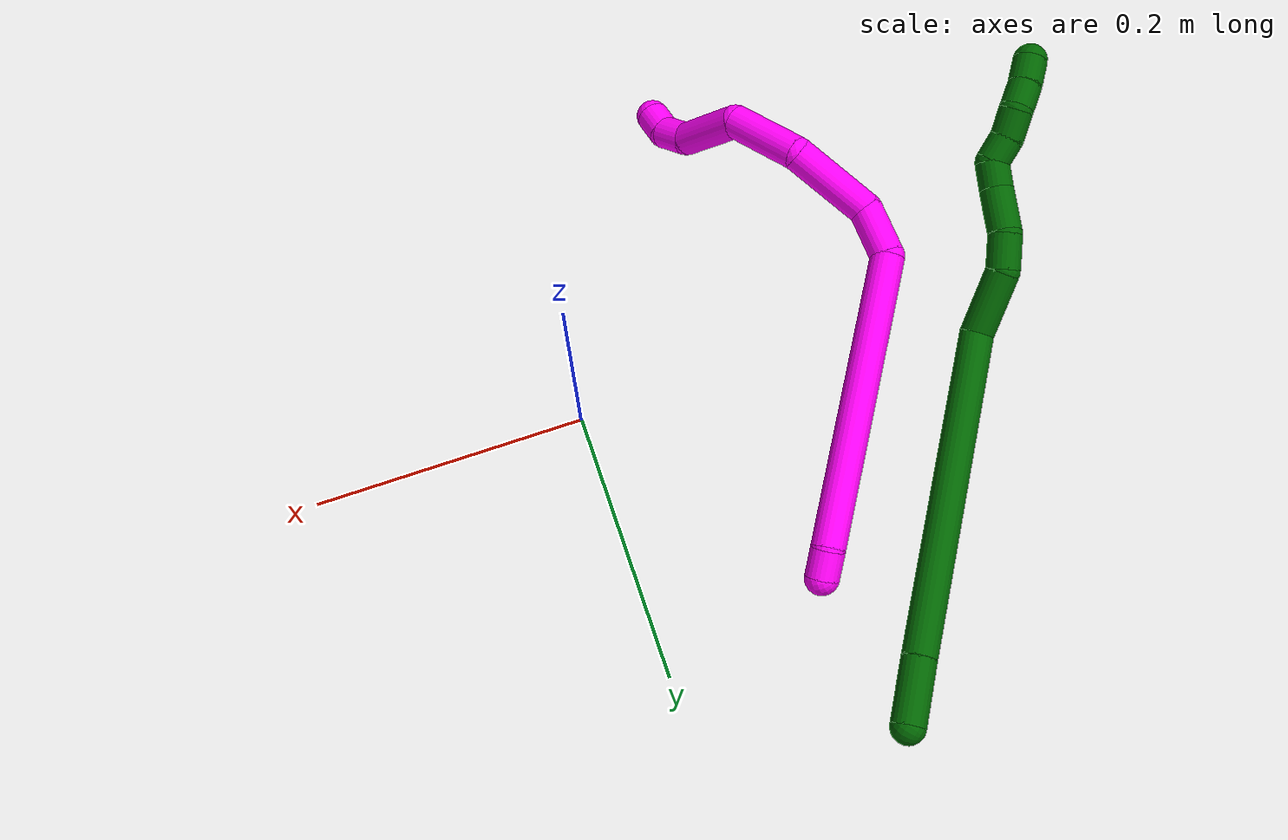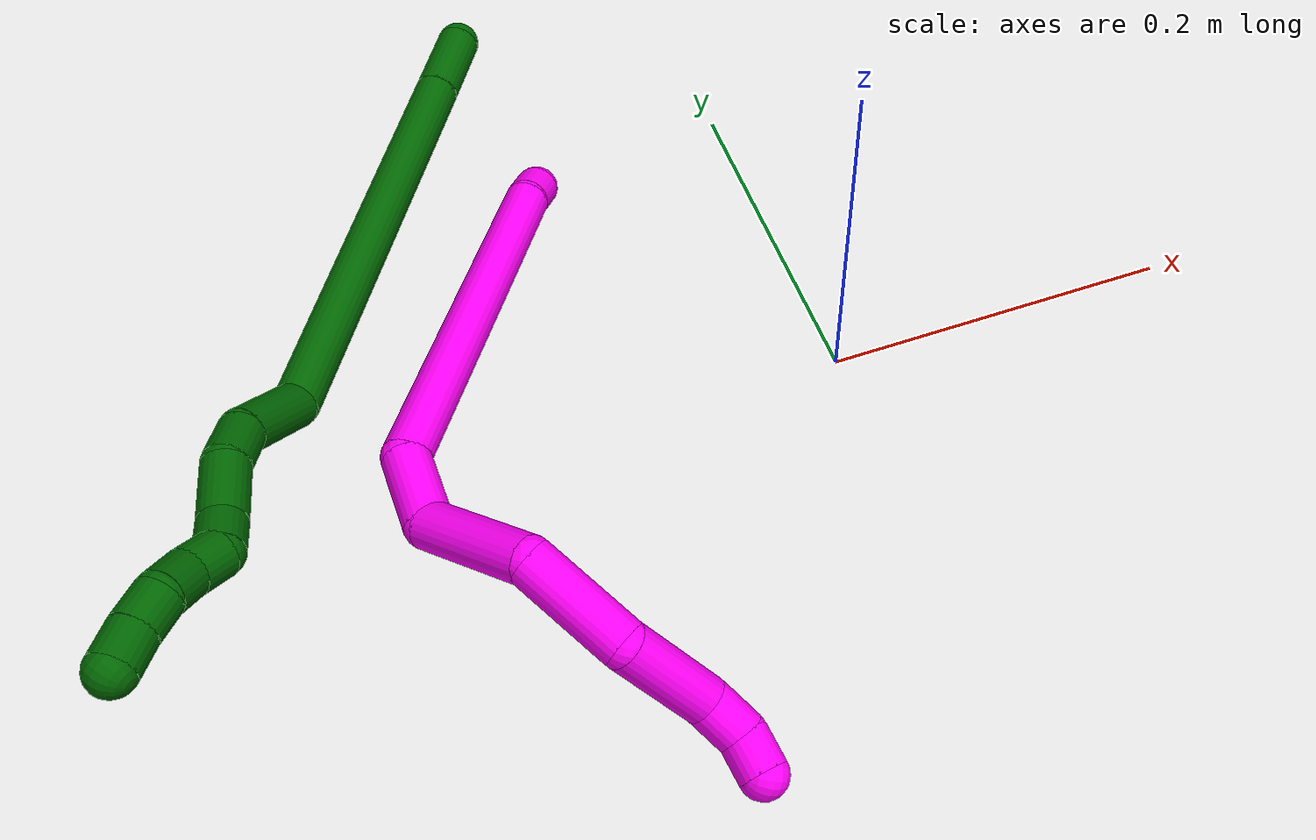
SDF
<sdf version="1.7">
 <world name="default">
  <model name="6">
   <static>0</static>
   <link name="6">
    <collision name="collision-cylinder-e_1_1_4">
     <pose>-0.007667 -0.019816 -0.009415 2.01435 -0.336202 -0.52465</pose>
     <geometry><cylinder><radius>0.0125</radius><length>0.04648</length></cylinder></geometry>
     <surface>
      <friction><ode><mu>1.16</mu><mu2>1.16</mu2><slip1>0</slip1><slip2>0</slip2></ode></friction>
      <contact><ode><kp>1e+06</kp><kd>1</kd><max_vel>0</max_vel><min_depth>0.001</min_depth></ode></contact>
     </surface>
    </collision>
    <visual name="visual-cylinder-e_1_1_4">
     <pose>-0.007667 -0.019816 -0.009415 2.01435 -0.336202 -0.52465</pose>
     <geometry><cylinder><radius>0.0125</radius><length>0.04648</length></cylinder></geometry>
     <material><ambient>0 0.392157 0.003922 1</ambient></material>
    </visual>
    <collision name="collision-cylinder-e_2_4_5">
     <pose>-0.059423 -0.141425 -0.065908 2.00399 -0.374554 -0.576344</pose>
     <geometry><cylinder><radius>0.0125</radius><length>0.241015</length></cylinder></geometry>
     <surface>
      <friction><ode><mu>1.16</mu><mu2>1.16</mu2><slip1>0</slip1><slip2>0</slip2></ode></friction>
      <contact><ode><kp>1e+06</kp><kd>1</kd><max_vel>0</max_vel><min_depth>0.001</min_depth></ode></contact>
     </surface>
    </collision>
    <visual name="visual-cylinder-e_2_4_5">
     <pose>-0.059423 -0.141425 -0.065908 2.00399 -0.374554 -0.576344</pose>
     <geometry><cylinder><radius>0.0125</radius><length>0.241015</length></cylinder></geometry>
     <material><ambient>0 0.392157 0.003922 1</ambient></material>
    </visual>
    <collision name="collision-cylinder-e_3_5_6">
     <pose>-0.098941 -0.267328 -0.116269 1.70609 0.185649 0.212443</pose>
     <geometry><cylinder><radius>0.0125</radius><length>0.049514</length></cylinder></geometry>
     <surface>
      <friction><ode><mu>1.16</mu><mu2>1.16</mu2><slip1>0</slip1><slip2>0</slip2></ode></friction>
      <contact><ode><kp>1e+06</kp><kd>1</kd><max_vel>0</max_vel><min_depth>0.001</min_depth></ode></contact>
     </surface>
    </collision>
    <visual name="visual-cylinder-e_3_5_6">
     <pose>-0.098941 -0.267328 -0.116269 1.70609 0.185649 0.212443</pose>
     <geometry><cylinder><radius>0.0125</radius><length>0.049514</length></cylinder></geometry>
     <material><ambient>0 0.392157 0.003922 1</ambient></material>
    </visual>
    <collision name="collision-cylinder-e_4_6_7">
     <pose>-0.094602 -0.30308 -0.125881 2.0688 -0.017369 -0.029213</pose>
     <geometry><cylinder><radius>0.0125</radius><length>0.026508</length></cylinder></geometry>
     <surface>
      <friction><ode><mu>1.16</mu><mu2>1.16</mu2><slip1>0</slip1><slip2>0</slip2></ode></friction>
      <contact><ode><kp>1e+06</kp><kd>1</kd><max_vel>0</max_vel><min_depth>0.001</min_depth></ode></contact>
     </surface>
    </collision>
    <visual name="visual-cylinder-e_4_6_7">
     <pose>-0.094602 -0.30308 -0.125881 2.0688 -0.017369 -0.029213</pose>
     <geometry><cylinder><radius>0.0125</radius><length>0.026508</length></cylinder></geometry>
     <material><ambient>0 0.392157 0.003922 1</ambient></material>
    </visual>
    <collision name="collision-cylinder-e_5_7_8">
     <pose>-0.098632 -0.326811 -0.143744 2.33264 -0.223648 -0.513076</pose>
     <geometry><cylinder><radius>0.0125</radius><length>0.034269</length></cylinder></geometry>
     <surface>
      <friction><ode><mu>1.16</mu><mu2>1.16</mu2><slip1>0</slip1><slip2>0</slip2></ode></friction>
      <contact><ode><kp>1e+06</kp><kd>1</kd><max_vel>0</max_vel><min_depth>0.001</min_depth></ode></contact>
     </surface>
    </collision>
    <visual name="visual-cylinder-e_5_7_8">
     <pose>-0.098632 -0.326811 -0.143744 2.33264 -0.223648 -0.513076</pose>
     <geometry><cylinder><radius>0.0125</radius><length>0.034269</length></cylinder></geometry>
     <material><ambient>0 0.392157 0.003922 1</ambient></material>
    </visual>
    <collision name="collision-cylinder-e_6_8_9">
     <pose>-0.102328 -0.346766 -0.162042 2.28113 0.010081 0.021968</pose>
     <geometry><cylinder><radius>0.0125</radius><length>0.02075</length></cylinder></geometry>
     <surface>
      <friction><ode><mu>1.16</mu><mu2>1.16</mu2><slip1>0</slip1><slip2>0</slip2></ode></friction>
      <contact><ode><kp>1e+06</kp><kd>1</kd><max_vel>0</max_vel><min_depth>0.001</min_depth></ode></contact>
     </surface>
    </collision>
    <visual name="visual-cylinder-e_6_8_9">
     <pose>-0.102328 -0.346766 -0.162042 2.28113 0.010081 0.021968</pose>
     <geometry><cylinder><radius>0.0125</radius><length>0.02075</length></cylinder></geometry>
     <material><ambient>0 0.392157 0.003922 1</ambient></material>
    </visual>
    <collision name="collision-cylinder-e_7_9_10">
     <pose>-0.102532 -0.364686 -0.168888 1.57893 -0.030661 -0.030912</pose>
     <geometry><cylinder><radius>0.0125</radius><length>0.02012</length></cylinder></geometry>
     <surface>
      <friction><ode><mu>1.16</mu><mu2>1.16</mu2><slip1>0</slip1><slip2>0</slip2></ode></friction>
      <contact><ode><kp>1e+06</kp><kd>1</kd><max_vel>0</max_vel><min_depth>0.001</min_depth></ode></contact>
     </surface>
    </collision>
    <visual name="visual-cylinder-e_7_9_10">
     <pose>-0.102532 -0.364686 -0.168888 1.57893 -0.030661 -0.030912</pose>
     <geometry><cylinder><radius>0.0125</radius><length>0.02012</length></cylinder></geometry>
     <material><ambient>0 0.392157 0.003922 1</ambient></material>
    </visual>
    <collision name="collision-cylinder-e_8_10_11">
     <pose>-0.101519 -0.385055 -0.171208 1.78444 0.124575 0.154393</pose>
     <geometry><cylinder><radius>0.0125</radius><length>0.021273</length></cylinder></geometry>
     <surface>
      <friction><ode><mu>1.16</mu><mu2>1.16</mu2><slip1>0</slip1><slip2>0</slip2></ode></friction>
      <contact><ode><kp>1e+06</kp><kd>1</kd><max_vel>0</max_vel><min_depth>0.001</min_depth></ode></contact>
     </surface>
    </collision>
    <visual name="visual-cylinder-e_8_10_11">
     <pose>-0.101519 -0.385055 -0.171208 1.78444 0.124575 0.154393</pose>
     <geometry><cylinder><radius>0.0125</radius><length>0.021273</length></cylinder></geometry>
     <material><ambient>0 0.392157 0.003922 1</ambient></material>
    </visual>
    <collision name="collision-cylinder-e_9_11_12">
     <pose>-0.102926 -0.404659 -0.17599 1.83811 -0.276066 -0.360208</pose>
     <geometry><cylinder><radius>0.0125</radius><length>0.020024</length></cylinder></geometry>
     <surface>
      <friction><ode><mu>1.16</mu><mu2>1.16</mu2><slip1>0</slip1><slip2>0</slip2></ode></friction>
      <contact><ode><kp>1e+06</kp><kd>1</kd><max_vel>0</max_vel><min_depth>0.001</min_depth></ode></contact>
     </surface>
    </collision>
    <visual name="visual-cylinder-e_9_11_12">
     <pose>-0.102926 -0.404659 -0.17599 1.83811 -0.276066 -0.360208</pose>
     <geometry><cylinder><radius>0.0125</radius><length>0.020024</length></cylinder></geometry>
     <material><ambient>0 0.392157 0.003922 1</ambient></material>
    </visual>
    <collision name="collision-cylinder-e_10_12_2">
     <pose>-0.108424 -0.422892 -0.182119 1.952 -0.279837 -0.410496</pose>
     <geometry><cylinder><radius>0.0125</radius><length>0.020047</length></cylinder></geometry>
     <surface>
      <friction><ode><mu>1.16</mu><mu2>1.16</mu2><slip1>0</slip1><slip2>0</slip2></ode></friction>
      <contact><ode><kp>1e+06</kp><kd>1</kd><max_vel>0</max_vel><min_depth>0.001</min_depth></ode></contact>
     </surface>
    </collision>
    <visual name="visual-cylinder-e_10_12_2">
     <pose>-0.108424 -0.422892 -0.182119 1.952 -0.279837 -0.410496</pose>
     <geometry><cylinder><radius>0.0125</radius><length>0.020047</length></cylinder></geometry>
     <material><ambient>0 0.392157 0.003922 1</ambient></material>
    </visual>
    <collision name="collision-sphere-2">
     <pose>-0.111192 -0.431834 -0.185703 0 -0 0</pose>
     <geometry><sphere><radius>0.0125</radius></sphere></geometry>
     <surface>
      <friction><ode><mu>1.16</mu><mu2>1.16</mu2><slip1>0</slip1><slip2>0</slip2></ode></friction>
      <contact><ode><kp>1e+06</kp><kd>1</kd><max_vel>0</max_vel><min_depth>0.001</min_depth></ode></contact>
     </surface>
    </collision>
    <visual name="visual-sphere-2">
     <pose>-0.111192 -0.431834 -0.185703 0 -0 0</pose>
     <geometry><sphere><radius>0.0125</radius></sphere></geometry>
     <material><ambient>0 0.392157 0.003922 1</ambient></material>
    </visual>
    <collision name="collision-sphere-12">
     <pose>-0.105655 -0.41395 -0.178535 0 -0 0</pose>
     <geometry><sphere><radius>0.0125</radius></sphere></geometry>
     <surface>
      <friction><ode><mu>1.16</mu><mu2>1.16</mu2><slip1>0</slip1><slip2>0</slip2></ode></friction>
      <contact><ode><kp>1e+06</kp><kd>1</kd><max_vel>0</max_vel><min_depth>0.001</min_depth></ode></contact>
     </surface>
    </collision>
    <visual name="visual-sphere-12">
     <pose>-0.105655 -0.41395 -0.178535 0 -0 0</pose>
     <geometry><sphere><radius>0.0125</radius></sphere></geometry>
     <material><ambient>0 0.392157 0.003922 1</ambient></material>
    </visual>
    <collision name="collision-sphere-11">
     <pose>-0.100197 -0.395369 -0.173446 0 -0 0</pose>
     <geometry><sphere><radius>0.0125</radius></sphere></geometry>
     <surface>
      <friction><ode><mu>1.16</mu><mu2>1.16</mu2><slip1>0</slip1><slip2>0</slip2></ode></friction>
      <contact><ode><kp>1e+06</kp><kd>1</kd><max_vel>0</max_vel><min_depth>0.001</min_depth></ode></contact>
     </surface>
    </collision>
    <visual name="visual-sphere-11">
     <pose>-0.100197 -0.395369 -0.173446 0 -0 0</pose>
     <geometry><sphere><radius>0.0125</radius></sphere></geometry>
     <material><ambient>0 0.392157 0.003922 1</ambient></material>
    </visual>
    <collision name="collision-sphere-10">
     <pose>-0.10284 -0.374741 -0.16897 0 -0 0</pose>
     <geometry><sphere><radius>0.0125</radius></sphere></geometry>
     <surface>
      <friction><ode><mu>1.16</mu><mu2>1.16</mu2><slip1>0</slip1><slip2>0</slip2></ode></friction>
      <contact><ode><kp>1e+06</kp><kd>1</kd><max_vel>0</max_vel><min_depth>0.001</min_depth></ode></contact>
     </surface>
    </collision>
    <visual name="visual-sphere-10">
     <pose>-0.10284 -0.374741 -0.16897 0 -0 0</pose>
     <geometry><sphere><radius>0.0125</radius></sphere></geometry>
     <material><ambient>0 0.392157 0.003922 1</ambient></material>
    </visual>
    <collision name="collision-sphere-9">
     <pose>-0.102223 -0.354631 -0.168807 0 -0 0</pose>
     <geometry><sphere><radius>0.0125</radius></sphere></geometry>
     <surface>
      <friction><ode><mu>1.16</mu><mu2>1.16</mu2><slip1>0</slip1><slip2>0</slip2></ode></friction>
      <contact><ode><kp>1e+06</kp><kd>1</kd><max_vel>0</max_vel><min_depth>0.001</min_depth></ode></contact>
     </surface>
    </collision>
    <visual name="visual-sphere-9">
     <pose>-0.102223 -0.354631 -0.168807 0 -0 0</pose>
     <geometry><sphere><radius>0.0125</radius></sphere></geometry>
     <material><ambient>0 0.392157 0.003922 1</ambient></material>
    </visual>
    <collision name="collision-sphere-4">
     <pose>-0.015334 -0.039632 -0.01883 0 -0 0</pose>
     <geometry><sphere><radius>0.0125</radius></sphere></geometry>
     <surface>
      <friction><ode><mu>1.16</mu><mu2>1.16</mu2><slip1>0</slip1><slip2>0</slip2></ode></friction>
      <contact><ode><kp>1e+06</kp><kd>1</kd><max_vel>0</max_vel><min_depth>0.001</min_depth></ode></contact>
     </surface>
    </collision>
    <visual name="visual-sphere-4">
     <pose>-0.015334 -0.039632 -0.01883 0 -0 0</pose>
     <geometry><sphere><radius>0.0125</radius></sphere></geometry>
     <material><ambient>0 0.392157 0.003922 1</ambient></material>
    </visual>
    <collision name="collision-sphere-1">
     <geometry><sphere><radius>0.0125</radius></sphere></geometry>
     <surface>
      <friction><ode><mu>1.16</mu><mu2>1.16</mu2><slip1>0</slip1><slip2>0</slip2></ode></friction>
      <contact><ode><kp>1e+06</kp><kd>1</kd><max_vel>0</max_vel><min_depth>0.001</min_depth></ode></contact>
     </surface>
    </collision>
    <visual name="visual-sphere-1">
     <geometry><sphere><radius>0.0125</radius></sphere></geometry>
     <material><ambient>0 0.392157 0.003922 1</ambient></material>
    </visual>
    <collision name="collision-sphere-8">
     <pose>-0.102433 -0.3389 -0.155276 0 -0 0</pose>
     <geometry><sphere><radius>0.0125</radius></sphere></geometry>
     <surface>
      <friction><ode><mu>1.16</mu><mu2>1.16</mu2><slip1>0</slip1><slip2>0</slip2></ode></friction>
      <contact><ode><kp>1e+06</kp><kd>1</kd><max_vel>0</max_vel><min_depth>0.001</min_depth></ode></contact>
     </surface>
    </collision>
    <visual name="visual-sphere-8">
     <pose>-0.102433 -0.3389 -0.155276 0 -0 0</pose>
     <geometry><sphere><radius>0.0125</radius></sphere></geometry>
     <material><ambient>0 0.392157 0.003922 1</ambient></material>
    </visual>
    <collision name="collision-sphere-5">
     <pose>-0.103511 -0.243219 -0.112987 0 -0 0</pose>
     <geometry><sphere><radius>0.0125</radius></sphere></geometry>
     <surface>
      <friction><ode><mu>1.16</mu><mu2>1.16</mu2><slip1>0</slip1><slip2>0</slip2></ode></friction>
      <contact><ode><kp>1e+06</kp><kd>1</kd><max_vel>0</max_vel><min_depth>0.001</min_depth></ode></contact>
     </surface>
    </collision>
    <visual name="visual-sphere-5">
     <pose>-0.103511 -0.243219 -0.112987 0 -0 0</pose>
     <geometry><sphere><radius>0.0125</radius></sphere></geometry>
     <material><ambient>0 0.392157 0.003922 1</ambient></material>
    </visual>
    <collision name="collision-sphere-6">
     <pose>-0.094372 -0.291437 -0.11955 0 -0 0</pose>
     <geometry><sphere><radius>0.0125</radius></sphere></geometry>
     <surface>
      <friction><ode><mu>1.16</mu><mu2>1.16</mu2><slip1>0</slip1><slip2>0</slip2></ode></friction>
      <contact><ode><kp>1e+06</kp><kd>1</kd><max_vel>0</max_vel><min_depth>0.001</min_depth></ode></contact>
     </surface>
    </collision>
    <visual name="visual-sphere-6">
     <pose>-0.094372 -0.291437 -0.11955 0 -0 0</pose>
     <geometry><sphere><radius>0.0125</radius></sphere></geometry>
     <material><ambient>0 0.392157 0.003922 1</ambient></material>
    </visual>
    <collision name="collision-sphere-7">
     <pose>-0.094832 -0.314722 -0.132211 0 -0 0</pose>
     <geometry><sphere><radius>0.0125</radius></sphere></geometry>
     <surface>
      <friction><ode><mu>1.16</mu><mu2>1.16</mu2><slip1>0</slip1><slip2>0</slip2></ode></friction>
      <contact><ode><kp>1e+06</kp><kd>1</kd><max_vel>0</max_vel><min_depth>0.001</min_depth></ode></contact>
     </surface>
    </collision>
    <visual name="visual-sphere-7">
     <pose>-0.094832 -0.314722 -0.132211 0 -0 0</pose>
     <geometry><sphere><radius>0.0125</radius></sphere></geometry>
     <material><ambient>0 0.392157 0.003922 1</ambient></material>
    </visual>
    <inertial>
     <pose>-0.07209 -0.213563 -0.095839 0 -0 0</pose>
     <mass>0.5</mass>
     <inertia>
      <ixx>0.000341</ixx>
      <ixy>0</ixy>
      <ixz>0</ixz>
      <iyy>-0.000846</iyy>
      <iyz>0</iyz>
      <izz>0.001445</izz>
     </inertia>
    </inertial>
   </link>
   <pose>-0.137298 0.288113 0.036575 -1.397 -1.11731 0.453192</pose>
  </model>
  <model name="10">
   <static>0</static>
   <link name="10">
    <collision name="collision-cylinder-e_1_1_4">
     <pose>0.00318 -0.009 0.004529 1.10455 0.305686 0.189289</pose>
     <geometry><cylinder><radius>0.0125</radius><length>0.021131</length></cylinder></geometry>
     <surface>
      <friction><ode><mu>1.16</mu><mu2>1.16</mu2><slip1>0</slip1><slip2>0</slip2></ode></friction>
      <contact><ode><kp>1e+06</kp><kd>1</kd><max_vel>0</max_vel><min_depth>0.001</min_depth></ode></contact>
     </surface>
    </collision>
    <visual name="visual-cylinder-e_1_1_4">
     <pose>0.00318 -0.009 0.004529 1.10455 0.305686 0.189289</pose>
     <geometry><cylinder><radius>0.0125</radius><length>0.021131</length></cylinder></geometry>
     <material><ambient>1 0 0.964706 1</ambient></material>
    </visual>
    <collision name="collision-cylinder-e_2_4_5">
     <pose>0.013487 -0.118887 0.046134 1.21863 0.066213 0.046218</pose>
     <geometry><cylinder><radius>0.0125</radius><length>0.215439</length></cylinder></geometry>
     <surface>
      <friction><ode><mu>1.16</mu><mu2>1.16</mu2><slip1>0</slip1><slip2>0</slip2></ode></friction>
      <contact><ode><kp>1e+06</kp><kd>1</kd><max_vel>0</max_vel><min_depth>0.001</min_depth></ode></contact>
     </surface>
    </collision>
    <visual name="visual-cylinder-e_2_4_5">
     <pose>0.013487 -0.118887 0.046134 1.21863 0.066213 0.046218</pose>
     <geometry><cylinder><radius>0.0125</radius><length>0.215439</length></cylinder></geometry>
     <material><ambient>1 0 0.964706 1</ambient></material>
    </visual>
    <collision name="collision-cylinder-e_3_5_6">
     <pose>0.023351 -0.239351 0.078144 1.82393 0.134521 0.173572</pose>
     <geometry><cylinder><radius>0.0125</radius><length>0.040812</length></cylinder></geometry>
     <surface>
      <friction><ode><mu>1.16</mu><mu2>1.16</mu2><slip1>0</slip1><slip2>0</slip2></ode></friction>
      <contact><ode><kp>1e+06</kp><kd>1</kd><max_vel>0</max_vel><min_depth>0.001</min_depth></ode></contact>
     </surface>
    </collision>
    <visual name="visual-cylinder-e_3_5_6">
     <pose>0.023351 -0.239351 0.078144 1.82393 0.134521 0.173572</pose>
     <geometry><cylinder><radius>0.0125</radius><length>0.040812</length></cylinder></geometry>
     <material><ambient>1 0 0.964706 1</ambient></material>
    </visual>
    <collision name="collision-cylinder-e_4_6_7">
     <pose>0.047258 -0.277321 0.056304 2.31027 0.704742 1.38921</pose>
     <geometry><cylinder><radius>0.0125</radius><length>0.065357</length></cylinder></geometry>
     <surface>
      <friction><ode><mu>1.16</mu><mu2>1.16</mu2><slip1>0</slip1><slip2>0</slip2></ode></friction>
      <contact><ode><kp>1e+06</kp><kd>1</kd><max_vel>0</max_vel><min_depth>0.001</min_depth></ode></contact>
     </surface>
    </collision>
    <visual name="visual-cylinder-e_4_6_7">
     <pose>0.047258 -0.277321 0.056304 2.31027 0.704742 1.38921</pose>
     <geometry><cylinder><radius>0.0125</radius><length>0.065357</length></cylinder></geometry>
     <material><ambient>1 0 0.964706 1</ambient></material>
    </visual>
    <collision name="collision-cylinder-e_5_7_8">
     <pose>0.070984 -0.314999 0.018146 2.40771 0.088542 0.229506</pose>
     <geometry><cylinder><radius>0.0125</radius><length>0.057817</length></cylinder></geometry>
     <surface>
      <friction><ode><mu>1.16</mu><mu2>1.16</mu2><slip1>0</slip1><slip2>0</slip2></ode></friction>
      <contact><ode><kp>1e+06</kp><kd>1</kd><max_vel>0</max_vel><min_depth>0.001</min_depth></ode></contact>
     </surface>
    </collision>
    <visual name="visual-cylinder-e_5_7_8">
     <pose>0.070984 -0.314999 0.018146 2.40771 0.088542 0.229506</pose>
     <geometry><cylinder><radius>0.0125</radius><length>0.057817</length></cylinder></geometry>
     <material><ambient>1 0 0.964706 1</ambient></material>
    </visual>
    <collision name="collision-cylinder-e_6_8_9">
     <pose>0.063093 -0.34036 -0.027978 2.9008 -0.389199 -2.04053</pose>
     <geometry><cylinder><radius>0.0125</radius><length>0.055069</length></cylinder></geometry>
     <surface>
      <friction><ode><mu>1.16</mu><mu2>1.16</mu2><slip1>0</slip1><slip2>0</slip2></ode></friction>
      <contact><ode><kp>1e+06</kp><kd>1</kd><max_vel>0</max_vel><min_depth>0.001</min_depth></ode></contact>
     </surface>
    </collision>
    <visual name="visual-cylinder-e_6_8_9">
     <pose>0.063093 -0.34036 -0.027978 2.9008 -0.389199 -2.04053</pose>
     <geometry><cylinder><radius>0.0125</radius><length>0.055069</length></cylinder></geometry>
     <material><ambient>1 0 0.964706 1</ambient></material>
    </visual>
    <collision name="collision-cylinder-e_7_9_10">
     <pose>0.051286 -0.353347 -0.062267 2.51504 -0.114725 -0.350892</pose>
     <geometry><cylinder><radius>0.0125</radius><length>0.023731</length></cylinder></geometry>
     <surface>
      <friction><ode><mu>1.16</mu><mu2>1.16</mu2><slip1>0</slip1><slip2>0</slip2></ode></friction>
      <contact><ode><kp>1e+06</kp><kd>1</kd><max_vel>0</max_vel><min_depth>0.001</min_depth></ode></contact>
     </surface>
    </collision>
    <visual name="visual-cylinder-e_7_9_10">
     <pose>0.051286 -0.353347 -0.062267 2.51504 -0.114725 -0.350892</pose>
     <geometry><cylinder><radius>0.0125</radius><length>0.023731</length></cylinder></geometry>
     <material><ambient>1 0 0.964706 1</ambient></material>
    </visual>
    <collision name="collision-cylinder-e_8_10_2">
     <pose>0.049497 -0.369385 -0.076617 2.05509 -0.041817 -0.069232</pose>
     <geometry><cylinder><radius>0.0125</radius><length>0.020643</length></cylinder></geometry>
     <surface>
      <friction><ode><mu>1.16</mu><mu2>1.16</mu2><slip1>0</slip1><slip2>0</slip2></ode></friction>
      <contact><ode><kp>1e+06</kp><kd>1</kd><max_vel>0</max_vel><min_depth>0.001</min_depth></ode></contact>
     </surface>
    </collision>
    <visual name="visual-cylinder-e_8_10_2">
     <pose>0.049497 -0.369385 -0.076617 2.05509 -0.041817 -0.069232</pose>
     <geometry><cylinder><radius>0.0125</radius><length>0.020643</length></cylinder></geometry>
     <material><ambient>1 0 0.964706 1</ambient></material>
    </visual>
    <collision name="collision-sphere-2">
     <pose>0.049065 -0.378512 -0.081418 0 -0 0</pose>
     <geometry><sphere><radius>0.0125</radius></sphere></geometry>
     <surface>
      <friction><ode><mu>1.16</mu><mu2>1.16</mu2><slip1>0</slip1><slip2>0</slip2></ode></friction>
      <contact><ode><kp>1e+06</kp><kd>1</kd><max_vel>0</max_vel><min_depth>0.001</min_depth></ode></contact>
     </surface>
    </collision>
    <visual name="visual-sphere-2">
     <pose>0.049065 -0.378512 -0.081418 0 -0 0</pose>
     <geometry><sphere><radius>0.0125</radius></sphere></geometry>
     <material><ambient>1 0 0.964706 1</ambient></material>
    </visual>
    <collision name="collision-sphere-10">
     <pose>0.049928 -0.360259 -0.071815 0 -0 0</pose>
     <geometry><sphere><radius>0.0125</radius></sphere></geometry>
     <surface>
      <friction><ode><mu>1.16</mu><mu2>1.16</mu2><slip1>0</slip1><slip2>0</slip2></ode></friction>
      <contact><ode><kp>1e+06</kp><kd>1</kd><max_vel>0</max_vel><min_depth>0.001</min_depth></ode></contact>
     </surface>
    </collision>
    <visual name="visual-sphere-10">
     <pose>0.049928 -0.360259 -0.071815 0 -0 0</pose>
     <geometry><sphere><radius>0.0125</radius></sphere></geometry>
     <material><ambient>1 0 0.964706 1</ambient></material>
    </visual>
    <collision name="collision-sphere-9">
     <pose>0.052645 -0.346435 -0.052718 0 -0 0</pose>
     <geometry><sphere><radius>0.0125</radius></sphere></geometry>
     <surface>
      <friction><ode><mu>1.16</mu><mu2>1.16</mu2><slip1>0</slip1><slip2>0</slip2></ode></friction>
      <contact><ode><kp>1e+06</kp><kd>1</kd><max_vel>0</max_vel><min_depth>0.001</min_depth></ode></contact>
     </surface>
    </collision>
    <visual name="visual-sphere-9">
     <pose>0.052645 -0.346435 -0.052718 0 -0 0</pose>
     <geometry><sphere><radius>0.0125</radius></sphere></geometry>
     <material><ambient>1 0 0.964706 1</ambient></material>
    </visual>
    <collision name="collision-sphere-4">
     <pose>0.006359 -0.018001 0.009059 0 -0 0</pose>
     <geometry><sphere><radius>0.0125</radius></sphere></geometry>
     <surface>
      <friction><ode><mu>1.16</mu><mu2>1.16</mu2><slip1>0</slip1><slip2>0</slip2></ode></friction>
      <contact><ode><kp>1e+06</kp><kd>1</kd><max_vel>0</max_vel><min_depth>0.001</min_depth></ode></contact>
     </surface>
    </collision>
    <visual name="visual-sphere-4">
     <pose>0.006359 -0.018001 0.009059 0 -0 0</pose>
     <geometry><sphere><radius>0.0125</radius></sphere></geometry>
     <material><ambient>1 0 0.964706 1</ambient></material>
    </visual>
    <collision name="collision-sphere-1">
     <geometry><sphere><radius>0.0125</radius></sphere></geometry>
     <surface>
      <friction><ode><mu>1.16</mu><mu2>1.16</mu2><slip1>0</slip1><slip2>0</slip2></ode></friction>
      <contact><ode><kp>1e+06</kp><kd>1</kd><max_vel>0</max_vel><min_depth>0.001</min_depth></ode></contact>
     </surface>
    </collision>
    <visual name="visual-sphere-1">
     <geometry><sphere><radius>0.0125</radius></sphere></geometry>
     <material><ambient>1 0 0.964706 1</ambient></material>
    </visual>
    <collision name="collision-sphere-8">
     <pose>0.073541 -0.334285 -0.003237 0 -0 0</pose>
     <geometry><sphere><radius>0.0125</radius></sphere></geometry>
     <surface>
      <friction><ode><mu>1.16</mu><mu2>1.16</mu2><slip1>0</slip1><slip2>0</slip2></ode></friction>
      <contact><ode><kp>1e+06</kp><kd>1</kd><max_vel>0</max_vel><min_depth>0.001</min_depth></ode></contact>
     </surface>
    </collision>
    <visual name="visual-sphere-8">
     <pose>0.073541 -0.334285 -0.003237 0 -0 0</pose>
     <geometry><sphere><radius>0.0125</radius></sphere></geometry>
     <material><ambient>1 0 0.964706 1</ambient></material>
    </visual>
    <collision name="collision-sphere-5">
     <pose>0.020614 -0.219774 0.083209 0 -0 0</pose>
     <geometry><sphere><radius>0.0125</radius></sphere></geometry>
     <surface>
      <friction><ode><mu>1.16</mu><mu2>1.16</mu2><slip1>0</slip1><slip2>0</slip2></ode></friction>
      <contact><ode><kp>1e+06</kp><kd>1</kd><max_vel>0</max_vel><min_depth>0.001</min_depth></ode></contact>
     </surface>
    </collision>
    <visual name="visual-sphere-5">
     <pose>0.020614 -0.219774 0.083209 0 -0 0</pose>
     <geometry><sphere><radius>0.0125</radius></sphere></geometry>
     <material><ambient>1 0 0.964706 1</ambient></material>
    </visual>
    <collision name="collision-sphere-6">
     <pose>0.026087 -0.258928 0.07308 0 -0 0</pose>
     <geometry><sphere><radius>0.0125</radius></sphere></geometry>
     <surface>
      <friction><ode><mu>1.16</mu><mu2>1.16</mu2><slip1>0</slip1><slip2>0</slip2></ode></friction>
      <contact><ode><kp>1e+06</kp><kd>1</kd><max_vel>0</max_vel><min_depth>0.001</min_depth></ode></contact>
     </surface>
    </collision>
    <visual name="visual-sphere-6">
     <pose>0.026087 -0.258928 0.07308 0 -0 0</pose>
     <geometry><sphere><radius>0.0125</radius></sphere></geometry>
     <material><ambient>1 0 0.964706 1</ambient></material>
    </visual>
    <collision name="collision-sphere-7">
     <pose>0.068428 -0.295713 0.039528 0 -0 0</pose>
     <geometry><sphere><radius>0.0125</radius></sphere></geometry>
     <surface>
      <friction><ode><mu>1.16</mu><mu2>1.16</mu2><slip1>0</slip1><slip2>0</slip2></ode></friction>
      <contact><ode><kp>1e+06</kp><kd>1</kd><max_vel>0</max_vel><min_depth>0.001</min_depth></ode></contact>
     </surface>
    </collision>
    <visual name="visual-sphere-7">
     <pose>0.068428 -0.295713 0.039528 0 -0 0</pose>
     <geometry><sphere><radius>0.0125</radius></sphere></geometry>
     <material><ambient>1 0 0.964706 1</ambient></material>
    </visual>
    <inertial>
     <pose>0.033664 -0.213326 0.026706 0 -0 0</pose>
     <mass>0.5</mass>
     <inertia>
      <ixx>0.000919</ixx>
      <ixy>0</ixy>
      <ixz>0</ixz>
      <iyy>0.000314</iyy>
      <iyz>0</iyz>
      <izz>0.000754</izz>
     </inertia>
    </inertial>
   </link>
   <pose>-0.122554 0.171453 0.016043 0.074645 -1.11867 -0.329765</pose>
  </model>
 </world>
</sdf>
